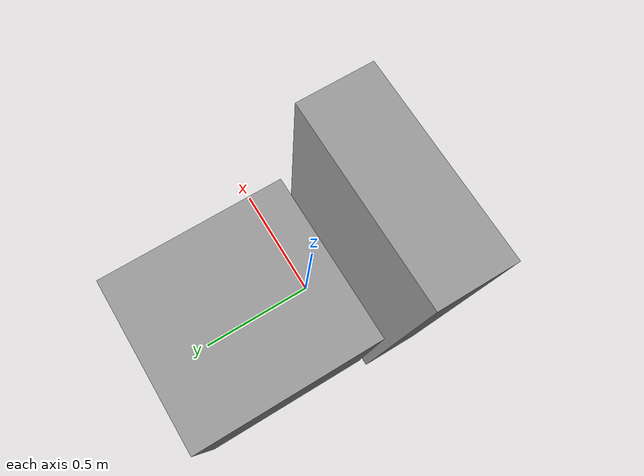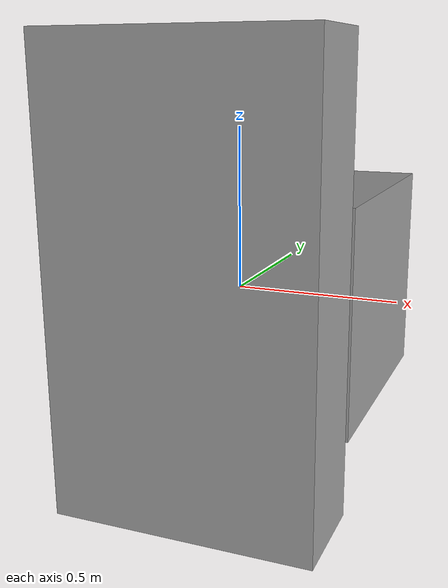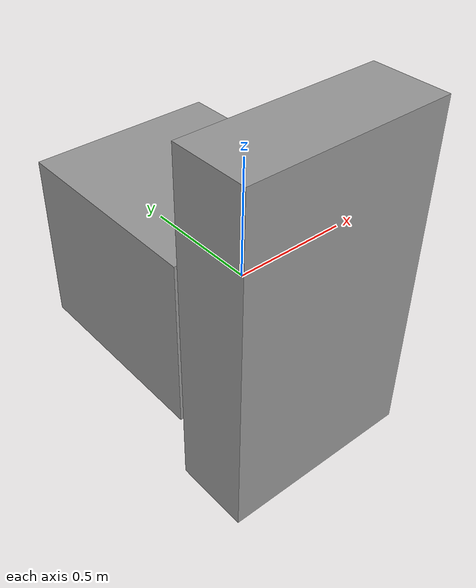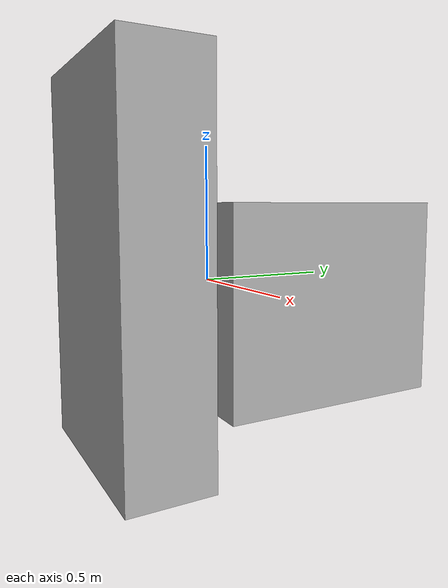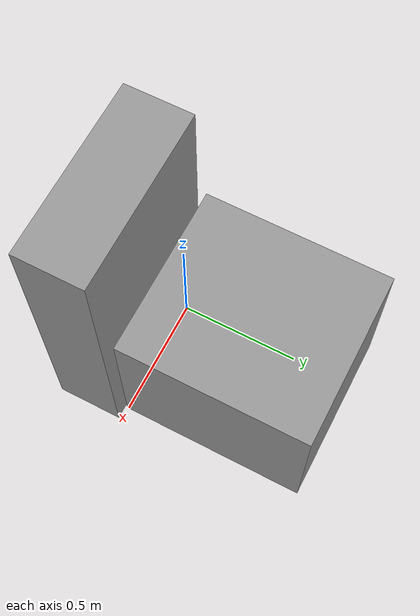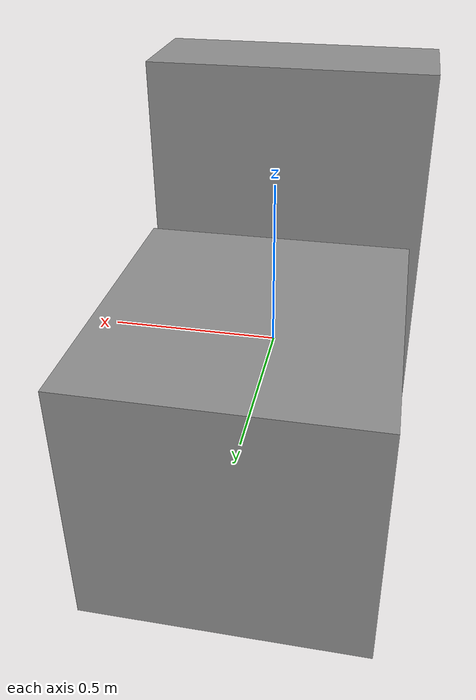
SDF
<?xml version='1.0'?>
<sdf version='1.6'>
  <model name='chair'>
    <link name='link_0'>
      <pose frame=''>0.00602 0.317394 -0.068747 0 -0 0</pose>
      <inertial>
        <mass>0.46727</mass>
        <inertia>
          <ixx>0.0476836</ixx>
          <ixy>0</ixy>
          <ixz>0</ixz>
          <iyy>0.0433394</iyy>
          <iyz>0</iyz>
          <izz>0.0508582</izz>
        </inertia>
        <pose frame=''>0 0 0 0 -0 0</pose>
      </inertial>
      <visual name='visual'>
        <pose frame=''>0 0 0 0 -0 0</pose>
        <geometry>
          <box>
            <size>0.772827 0.841913 0.718158</size>
          </box>
        </geometry>
        <material>
          <lighting>1</lighting>
          <script>
            <uri>file://media/materials/scripts/gazebo.material</uri>
            <name>Gazebo/Grey</name>
          </script>
          <ambient>0.3 0.3 0.3 1</ambient>
          <diffuse>0.7 0.7 0.7 1</diffuse>
          <specular>0.01 0.01 0.01 1</specular>
          <emissive>0 0 0 1</emissive>
        </material>
        <cast_shadows>1</cast_shadows>
        <transparency>0</transparency>
      </visual>
      <collision name='collision'>
        <laser_retro>0</laser_retro>
        <max_contacts>10</max_contacts>
        <pose frame=''>0 0 0 0 -0 0</pose>
        <geometry>
          <box>
            <size>0.772827 0.841913 0.718158</size>
          </box>
        </geometry>
        <surface>
          <friction>
            <ode>
              <mu>1</mu>
              <mu2>1</mu2>
              <fdir1>0 0 0</fdir1>
              <slip1>0</slip1>
              <slip2>0</slip2>
            </ode>
            <torsional>
              <coefficient>1</coefficient>
              <patch_radius>0</patch_radius>
              <surface_radius>0</surface_radius>
              <use_patch_radius>1</use_patch_radius>
              <ode>
                <slip>0</slip>
              </ode>
            </torsional>
          </friction>
          <bounce>
            <restitution_coefficient>0</restitution_coefficient>
            <threshold>1e+06</threshold>
          </bounce>
          <contact>
            <collide_without_contact>0</collide_without_contact>
            <collide_without_contact_bitmask>1</collide_without_contact_bitmask>
            <collide_bitmask>1</collide_bitmask>
            <ode>
              <soft_cfm>0</soft_cfm>
              <soft_erp>0.2</soft_erp>
              <kp>1e+13</kp>
              <kd>1</kd>
              <max_vel>0.01</max_vel>
              <min_depth>0</min_depth>
            </ode>
            <bullet>
              <split_impulse>1</split_impulse>
              <split_impulse_penetration_threshold>-0.01</split_impulse_penetration_threshold>
              <soft_cfm>0</soft_cfm>
              <soft_erp>0.2</soft_erp>
              <kp>1e+13</kp>
              <kd>1</kd>
            </bullet>
          </contact>
        </surface>
      </collision>
    </link>
    <link name='link_1'>
      <pose frame=''>-0.006027 -0.317398 0.068747 0 -0 0</pose>
      <inertial>
        <mass>0.35363</mass>
        <inertia>
          <ixx>0.0617854</ixx>
          <ixy>0</ixy>
          <ixz>0</ixz>
          <iyy>0.0784715</iyy>
          <iyz>0</iyz>
          <izz>0.0222576</izz>
        </inertia>
        <pose frame=''>0 0 0 0 -0 0</pose>
      </inertial>
      <visual name='visual'>
        <pose frame=''>0 0 0 0 -0 0</pose>
        <geometry>
          <box>
            <size>0.812859 0.307459 1.41495</size>
          </box>
        </geometry>
        <material>
          <lighting>1</lighting>
          <script>
            <uri>file://media/materials/scripts/gazebo.material</uri>
            <name>Gazebo/Grey</name>
          </script>
          <ambient>0.3 0.3 0.3 1</ambient>
          <diffuse>0.7 0.7 0.7 1</diffuse>
          <specular>0.01 0.01 0.01 1</specular>
          <emissive>0 0 0 1</emissive>
        </material>
        <cast_shadows>1</cast_shadows>
        <transparency>0</transparency>
      </visual>
      <collision name='collision'>
        <laser_retro>0</laser_retro>
        <max_contacts>10</max_contacts>
        <pose frame=''>0 0 0 0 -0 0</pose>
        <geometry>
          <box>
            <size>0.812859 0.307459 1.41495</size>
          </box>
        </geometry>
        <surface>
          <friction>
            <ode>
              <mu>1</mu>
              <mu2>1</mu2>
              <fdir1>0 0 0</fdir1>
              <slip1>0</slip1>
              <slip2>0</slip2>
            </ode>
            <torsional>
              <coefficient>1</coefficient>
              <patch_radius>0</patch_radius>
              <surface_radius>0</surface_radius>
              <use_patch_radius>1</use_patch_radius>
              <ode>
                <slip>0</slip>
              </ode>
            </torsional>
          </friction>
          <bounce>
            <restitution_coefficient>0</restitution_coefficient>
            <threshold>1e+06</threshold>
          </bounce>
          <contact>
            <collide_without_contact>0</collide_without_contact>
            <collide_without_contact_bitmask>1</collide_without_contact_bitmask>
            <collide_bitmask>1</collide_bitmask>
            <ode>
              <soft_cfm>0</soft_cfm>
              <soft_erp>0.2</soft_erp>
              <kp>1e+13</kp>
              <kd>1</kd>
              <max_vel>0.01</max_vel>
              <min_depth>0</min_depth>
            </ode>
            <bullet>
              <split_impulse>1</split_impulse>
              <split_impulse_penetration_threshold>-0.01</split_impulse_penetration_threshold>
              <soft_cfm>0</soft_cfm>
              <soft_erp>0.2</soft_erp>
              <kp>1e+13</kp>
              <kd>1</kd>
            </bullet>
          </contact>
        </surface>
      </collision>
    </link>
    <static>0</static>
    <allow_auto_disable>1</allow_auto_disable>
  </model>
</sdf>
